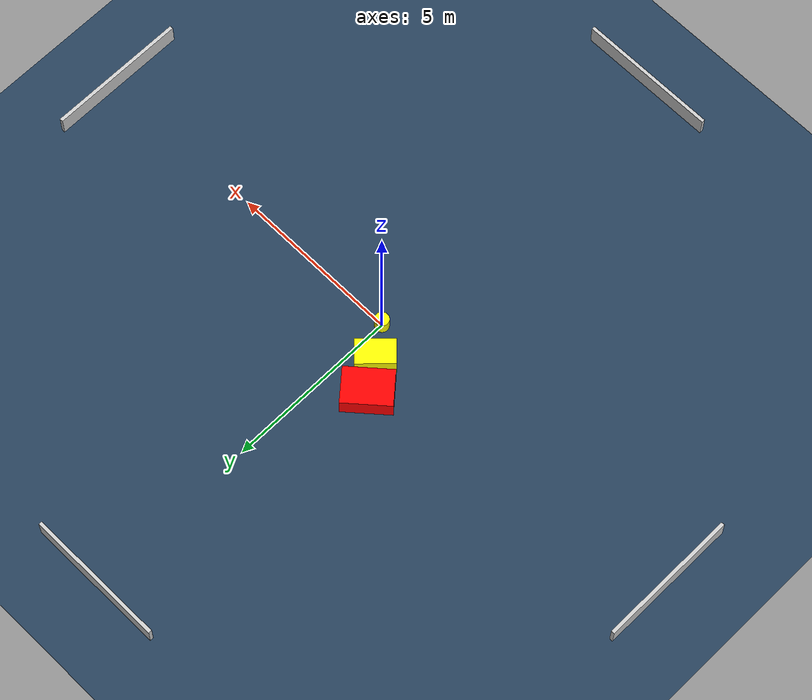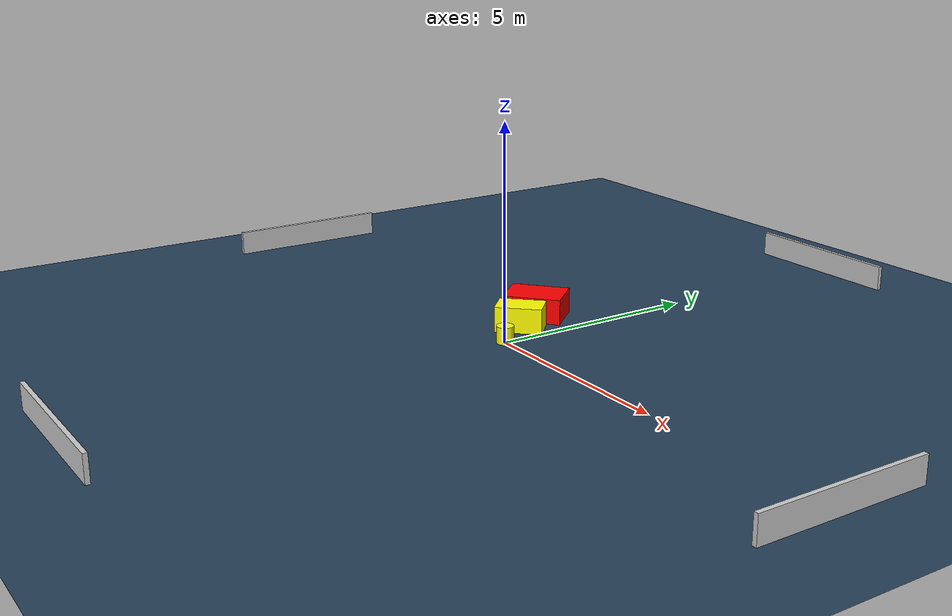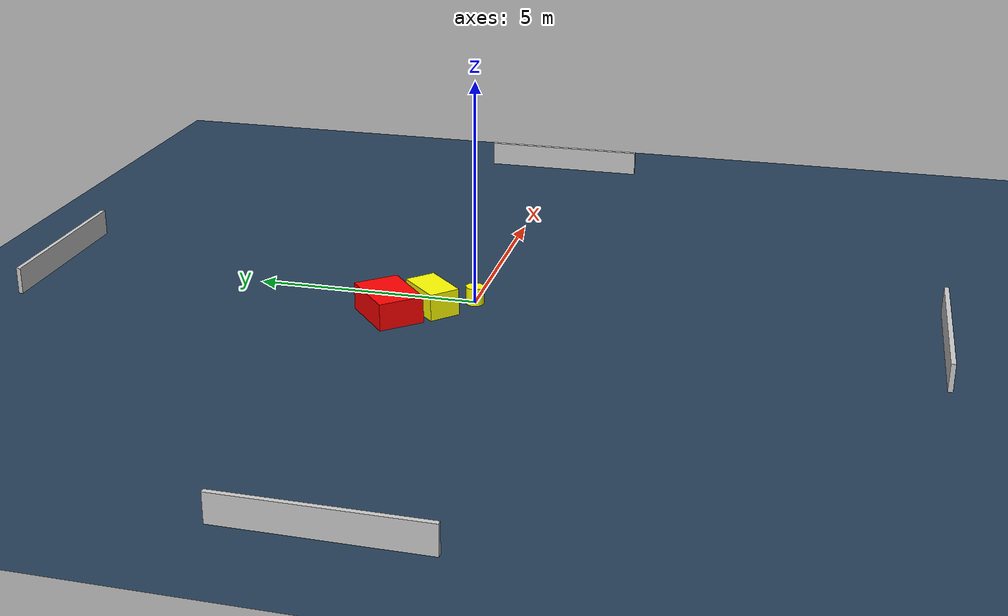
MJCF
<?xml version="1.0" ?>
<mujoco model="generated_environment">
  <option timestep="0.01" integrator="RK4" cone="elliptic"/>
  <default>
    <geom density="1"/>
  </default>
  <asset>
    <texture builtin="gradient" height="3072" name="skybox" rgb1="0.3 0.5 0.7" rgb2="0 0 0" type="skybox" width="512"/>
    <texture builtin="checker" height="300" name="groundplane" rgb1="0.2 0.3 0.4" rgb2="0.1 0.2 0.3" type="2d" width="300"/>
    <material name="groundplane" reflectance="0.2" texrepeat="5 5" texture="groundplane"/>
  </asset>
  <worldbody>
    <light dir="0 0 -1" directional="true" pos="0 0 1.5"/>
    <geom condim="3" friction="0.5 0.005 0.001" material="groundplane" name="floor" pos="0 0 0" size="0 0 0.05" type="plane"/>
    <body name="walls">
      <geom name="wall_1" condim="4" pos="-10.0 0.0 0.3" rgba="0.800000011920929 0.800000011920929 0.800000011920929 1.0" size="0.05 2.0 0.3" type="box"/>
      <geom name="wall_2" condim="4" pos="10.0 0.0 0.3" rgba="0.800000011920929 0.800000011920929 0.800000011920929 1.0" size="0.05 2.0 0.3" type="box"/>
      <geom name="wall_3" condim="4" pos="0.0 -10.0 0.3" rgba="0.800000011920929 0.800000011920929 0.800000011920929 1.0" size="2.0 0.05 0.3" type="box"/>
      <geom name="wall_4" condim="4" pos="0.0 10.0 0.3" rgba="0.800000011920929 0.800000011920929 0.800000011920929 1.0" size="2.0 0.05 0.3" type="box"/>
    </body>
    <body name="robot">
      <joint name="joint_x" type="slide" pos="0 0 0" axis="1 0 0"/>
      <joint name="joint_y" type="slide" pos="0 0 0" axis="0 1 0"/>
      <geom name="robot" type="cylinder" pos="0.0 0.0 0.2" size="0.2 0.2 0.0" mass="5.0" friction="1.0 0.005 0.0001" condim="4" rgba="1.0 1.0 0.0 1.0"/>
    </body>
    <body name="obstacle_1_movable">
      <geom name="obstacle_1_movable" condim="4" pos="-0.579621874257526 0.8130352975841292 0.3" euler="0 0 225.6100391847436" friction="0.0 0.005 0.001" rgba="1.0 1.0 0.0 1.0" size="0.5478024280158702 0.35125503027754224 0.3" type="box" mass="0.1"/>
      <joint type="free"/>
    </body>
    <body name="obstacle_2_static">
      <geom name="obstacle_2_static" condim="4" pos="-1.12673342686496 1.6364968329503238 0.3" euler="0 0 41.01483470038987" friction="0.0 0.005 0.001" rgba="1.0 0.0 0.0 1.0" size="0.6914890042353194 0.5087939315298011 0.3" type="box"/>
    </body>
  </worldbody>
  <actuator>
    <motor name="actuator_x" joint="joint_x" gear="1" ctrlrange="-1 1"/>
    <motor name="actuator_y" joint="joint_y" gear="1" ctrlrange="-1 1"/>
  </actuator>
</mujoco>
